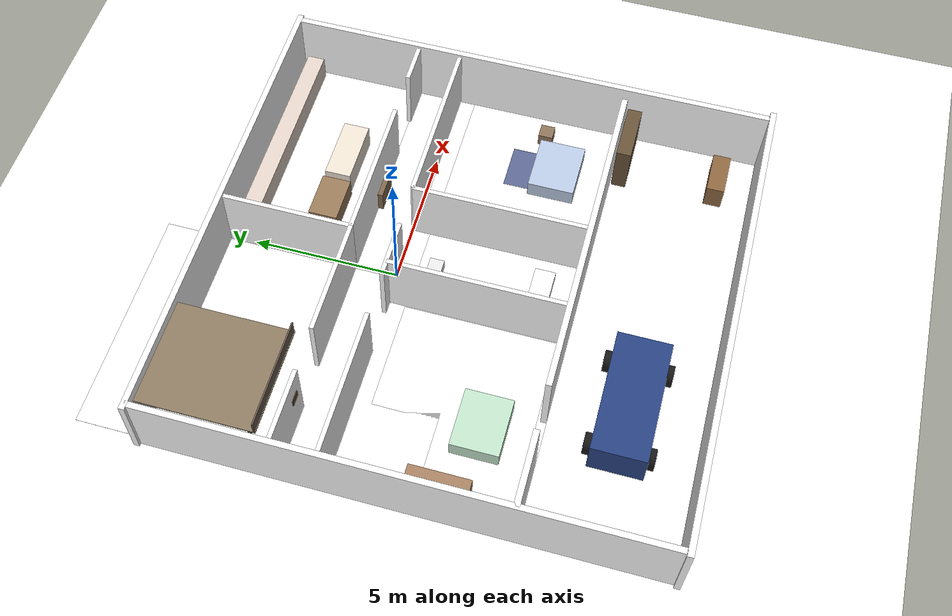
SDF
<sdf version="1.8">
 <world name="house">
  <model name="ground_plane">
   <static>true</static>
   <link name="link">
    <collision name="c"><geometry><plane><normal>0 0 1</normal><size>100 100</size></plane></geometry></collision>
    <visual name="v">
     <geometry><plane><normal>0 0 1</normal><size>100 100</size></plane></geometry>
     <material>
      <ambient>0.6 0.6 0.6 1</ambient>
      <diffuse>1 1 1 1</diffuse>
      <pbr><metal><albedo_map>model://textures/concrete.png</albedo_map><roughness>0.9</roughness></metal></pbr>
     </material>
    </visual>
   </link>
  </model>
  <model name="floor_living">
   <static>true</static>
   <pose>-4 2.7 0.003 0 0 0</pose>
   <link name="link">
    <collision name="c"><geometry><box><size>7.8 11 0.004</size></box></geometry></collision>
    <visual name="v">
     <geometry><box><size>7.8 11 0.004</size></box></geometry>
     <material>
      <ambient>0.6 0.6 0.6 1</ambient>
      <diffuse>1 1 1 1</diffuse>
      <pbr><metal><albedo_map>model://textures/wood_plank.png</albedo_map><roughness>0.7</roughness></metal></pbr>
     </material>
    </visual>
   </link>
  </model>
  <model name="floor_kitchen">
   <static>true</static>
   <pose>4 3.7 0.003 0 0 0</pose>
   <link name="link">
    <collision name="c"><geometry><box><size>7.8 4.4 0.004</size></box></geometry></collision>
    <visual name="v">
     <geometry><box><size>7.8 4.4 0.004</size></box></geometry>
     <material>
      <ambient>0.6 0.6 0.6 1</ambient>
      <diffuse>1 1 1 1</diffuse>
      <pbr><metal><albedo_map>model://textures/tile_kitchen.png</albedo_map><roughness>0.5</roughness></metal></pbr>
     </material>
    </visual>
   </link>
  </model>
  <model name="floor_bed1">
   <static>true</static>
   <pose>5 -3.2 0.003 0 0 0</pose>
   <link name="link">
    <collision name="c"><geometry><box><size>5.8 5.2 0.004</size></box></geometry></collision>
    <visual name="v">
     <geometry><box><size>5.8 5.2 0.004</size></box></geometry>
     <material>
      <ambient>0.6 0.6 0.6 1</ambient>
      <diffuse>1 1 1 1</diffuse>
      <pbr><metal><albedo_map>model://textures/carpet_blue.png</albedo_map><roughness>0.95</roughness></metal></pbr>
     </material>
    </visual>
   </link>
  </model>
  <model name="floor_bed2">
   <static>true</static>
   <pose>-4.5 -3.2 0.003 0 0 0</pose>
   <link name="link">
    <collision name="c"><geometry><box><size>6.8 5.2 0.004</size></box></geometry></collision>
    <visual name="v">
     <geometry><box><size>6.8 5.2 0.004</size></box></geometry>
     <material>
      <ambient>0.6 0.6 0.6 1</ambient>
      <diffuse>1 1 1 1</diffuse>
      <pbr>
       <metal><albedo_map>model://textures/carpet_green.png</albedo_map><roughness>0.95</roughness></metal>
      </pbr>
     </material>
    </visual>
   </link>
  </model>
  <model name="floor_bath">
   <static>true</static>
   <pose>0.5 -3.2 0.003 0 0 0</pose>
   <link name="link">
    <collision name="c"><geometry><box><size>3 5.2 0.004</size></box></geometry></collision>
    <visual name="v">
     <geometry><box><size>3 5.2 0.004</size></box></geometry>
     <material>
      <ambient>0.6 0.6 0.6 1</ambient>
      <diffuse>1 1 1 1</diffuse>
      <pbr><metal><albedo_map>model://textures/tile_bath.png</albedo_map><roughness>0.5</roughness></metal></pbr>
     </material>
    </visual>
   </link>
  </model>
  <model name="floor_garage">
   <static>true</static>
   <pose>0 -8.5 0.003 0 0 0</pose>
   <link name="link">
    <collision name="c"><geometry><box><size>16 4.8 0.004</size></box></geometry></collision>
    <visual name="v">
     <geometry><box><size>16 4.8 0.004</size></box></geometry>
     <material>
      <ambient>0.6 0.6 0.6 1</ambient>
      <diffuse>1 1 1 1</diffuse>
      <pbr><metal><albedo_map>model://textures/concrete.png</albedo_map><roughness>0.9</roughness></metal></pbr>
     </material>
    </visual>
   </link>
  </model>
  <model name="wall_n">
   <static>true</static>
   <pose>0  6 1.25 0 0 0</pose>
   <link name="link">
    <collision name="c"><geometry><box><size>16.4 0.2 2.5</size></box></geometry></collision>
    <visual name="v">
     <geometry><box><size>16.4 0.2 2.5</size></box></geometry>
     <material>
      <ambient>0.6 0.6 0.6 1</ambient>
      <diffuse>1 1 1 1</diffuse>
      <pbr><metal><albedo_map>model://textures/drywall.png</albedo_map><roughness>0.85</roughness></metal></pbr>
     </material>
    </visual>
   </link>
  </model>
  <model name="wall_garage_n_a">
   <static>true</static>
   <pose>-6.75 -6 1.25 0 0 0</pose>
   <link name="link">
    <collision name="c"><geometry><box><size>2.5 0.2 2.5</size></box></geometry></collision>
    <visual name="v">
     <geometry><box><size>2.5 0.2 2.5</size></box></geometry>
     <material>
      <ambient>0.6 0.6 0.6 1</ambient>
      <diffuse>1 1 1 1</diffuse>
      <pbr><metal><albedo_map>model://textures/drywall.png</albedo_map><roughness>0.85</roughness></metal></pbr>
     </material>
    </visual>
   </link>
  </model>
  <model name="wall_garage_n_b">
   <static>true</static>
   <pose>1.75 -6 1.25 0 0 0</pose>
   <link name="link">
    <collision name="c"><geometry><box><size>11.5 0.2 2.5</size></box></geometry></collision>
    <visual name="v">
     <geometry><box><size>11.5 0.2 2.5</size></box></geometry>
     <material>
      <ambient>0.6 0.6 0.6 1</ambient>
      <diffuse>1 1 1 1</diffuse>
      <pbr><metal><albedo_map>model://textures/drywall.png</albedo_map><roughness>0.85</roughness></metal></pbr>
     </material>
    </visual>
   </link>
  </model>
  <model name="wall_s">
   <static>true</static>
   <pose>0 -11 1.3 0 0 0</pose>
   <link name="link">
    <collision name="c"><geometry><box><size>16.4 0.2 2.6</size></box></geometry></collision>
    <visual name="v">
     <geometry><box><size>16.4 0.2 2.6</size></box></geometry>
     <material>
      <ambient>0.6 0.6 0.6 1</ambient>
      <diffuse>1 1 1 1</diffuse>
      <pbr><metal><albedo_map>model://textures/concrete.png</albedo_map><roughness>0.9</roughness></metal></pbr>
     </material>
    </visual>
   </link>
  </model>
  <model name="wall_e">
   <static>true</static>
   <pose>8  -2.5 1.25 0 0 0</pose>
   <link name="link">
    <collision name="c"><geometry><box><size>0.2 17 2.5</size></box></geometry></collision>
    <visual name="v">
     <geometry><box><size>0.2 17 2.5</size></box></geometry>
     <material>
      <ambient>0.6 0.6 0.6 1</ambient>
      <diffuse>1 1 1 1</diffuse>
      <pbr><metal><albedo_map>model://textures/drywall.png</albedo_map><roughness>0.85</roughness></metal></pbr>
     </material>
    </visual>
   </link>
  </model>
  <model name="wall_w">
   <static>true</static>
   <pose>-8  -2.5 1.25 0 0 0</pose>
   <link name="link">
    <collision name="c"><geometry><box><size>0.2 17 2.5</size></box></geometry></collision>
    <visual name="v">
     <geometry><box><size>0.2 17 2.5</size></box></geometry>
     <material>
      <ambient>0.6 0.6 0.6 1</ambient>
      <diffuse>1 1 1 1</diffuse>
      <pbr><metal><albedo_map>model://textures/drywall.png</albedo_map><roughness>0.85</roughness></metal></pbr>
     </material>
    </visual>
   </link>
  </model>
  <model name="wall_A1">
   <static>true</static>
   <pose>-5.5 0 1.2 0 0 0</pose>
   <link name="link">
    <collision name="c"><geometry><box><size>5 0.15 2.4</size></box></geometry></collision>
    <visual name="v">
     <geometry><box><size>5 0.15 2.4</size></box></geometry>
     <material>
      <ambient>0.6 0.6 0.6 1</ambient>
      <diffuse>1 1 1 1</diffuse>
      <pbr><metal><albedo_map>model://textures/drywall.png</albedo_map><roughness>0.85</roughness></metal></pbr>
     </material>
    </visual>
   </link>
  </model>
  <model name="wall_A2">
   <static>true</static>
   <pose>-0.5 0 1.2 0 0 0</pose>
   <link name="link">
    <collision name="c"><geometry><box><size>2 0.15 2.4</size></box></geometry></collision>
    <visual name="v">
     <geometry><box><size>2 0.15 2.4</size></box></geometry>
     <material>
      <ambient>0.6 0.6 0.6 1</ambient>
      <diffuse>1 1 1 1</diffuse>
      <pbr><metal><albedo_map>model://textures/drywall.png</albedo_map><roughness>0.85</roughness></metal></pbr>
     </material>
    </visual>
   </link>
  </model>
  <model name="wall_A4">
   <static>true</static>
   <pose>5 0 1.2 0 0 0</pose>
   <link name="link">
    <collision name="c"><geometry><box><size>6 0.15 2.4</size></box></geometry></collision>
    <visual name="v">
     <geometry><box><size>6 0.15 2.4</size></box></geometry>
     <material>
      <ambient>0.6 0.6 0.6 1</ambient>
      <diffuse>1 1 1 1</diffuse>
      <pbr><metal><albedo_map>model://textures/drywall.png</albedo_map><roughness>0.85</roughness></metal></pbr>
     </material>
    </visual>
   </link>
  </model>
  <model name="wall_B1">
   <static>true</static>
   <pose>-6.75 1.5 1.2 0 0 0</pose>
   <link name="link">
    <collision name="c"><geometry><box><size>2.5 0.15 2.4</size></box></geometry></collision>
    <visual name="v">
     <geometry><box><size>2.5 0.15 2.4</size></box></geometry>
     <material>
      <ambient>0.6 0.6 0.6 1</ambient>
      <diffuse>1 1 1 1</diffuse>
      <pbr><metal><albedo_map>model://textures/drywall.png</albedo_map><roughness>0.85</roughness></metal></pbr>
     </material>
    </visual>
   </link>
  </model>
  <model name="wall_B2">
   <static>true</static>
   <pose>-2 1.5 1.2 0 0 0</pose>
   <link name="link">
    <collision name="c"><geometry><box><size>4 0.15 2.4</size></box></geometry></collision>
    <visual name="v">
     <geometry><box><size>4 0.15 2.4</size></box></geometry>
     <material>
      <ambient>0.6 0.6 0.6 1</ambient>
      <diffuse>1 1 1 1</diffuse>
      <pbr><metal><albedo_map>model://textures/drywall.png</albedo_map><roughness>0.85</roughness></metal></pbr>
     </material>
    </visual>
   </link>
  </model>
  <model name="wall_B3">
   <static>true</static>
   <pose>2.5 1.5 1.2 0 0 0</pose>
   <link name="link">
    <collision name="c"><geometry><box><size>5 0.15 2.4</size></box></geometry></collision>
    <visual name="v">
     <geometry><box><size>5 0.15 2.4</size></box></geometry>
     <material>
      <ambient>0.6 0.6 0.6 1</ambient>
      <diffuse>1 1 1 1</diffuse>
      <pbr><metal><albedo_map>model://textures/drywall.png</albedo_map><roughness>0.85</roughness></metal></pbr>
     </material>
    </visual>
   </link>
  </model>
  <model name="wall_B5">
   <static>true</static>
   <pose>7.25 1.5 1.2 0 0 0</pose>
   <link name="link">
    <collision name="c"><geometry><box><size>1.5 0.15 2.4</size></box></geometry></collision>
    <visual name="v">
     <geometry><box><size>1.5 0.15 2.4</size></box></geometry>
     <material>
      <ambient>0.6 0.6 0.6 1</ambient>
      <diffuse>1 1 1 1</diffuse>
      <pbr><metal><albedo_map>model://textures/drywall.png</albedo_map><roughness>0.85</roughness></metal></pbr>
     </material>
    </visual>
   </link>
  </model>
  <model name="wall_C">
   <static>true</static>
   <pose>0 3.75 1.2 0 0 0</pose>
   <link name="link">
    <collision name="c"><geometry><box><size>0.15 4.5 2.4</size></box></geometry></collision>
    <visual name="v">
     <geometry><box><size>0.15 4.5 2.4</size></box></geometry>
     <material>
      <ambient>0.6 0.6 0.6 1</ambient>
      <diffuse>1 1 1 1</diffuse>
      <pbr><metal><albedo_map>model://textures/drywall.png</albedo_map><roughness>0.85</roughness></metal></pbr>
     </material>
    </visual>
   </link>
  </model>
  <model name="wall_D">
   <static>true</static>
   <pose>-1 -3 1.2 0 0 0</pose>
   <link name="link">
    <collision name="c"><geometry><box><size>0.15 6 2.4</size></box></geometry></collision>
    <visual name="v">
     <geometry><box><size>0.15 6 2.4</size></box></geometry>
     <material>
      <ambient>0.6 0.6 0.6 1</ambient>
      <diffuse>1 1 1 1</diffuse>
      <pbr><metal><albedo_map>model://textures/drywall.png</albedo_map><roughness>0.85</roughness></metal></pbr>
     </material>
    </visual>
   </link>
  </model>
  <model name="wall_E">
   <static>true</static>
   <pose>2 -3 1.2 0 0 0</pose>
   <link name="link">
    <collision name="c"><geometry><box><size>0.15 6 2.4</size></box></geometry></collision>
    <visual name="v">
     <geometry><box><size>0.15 6 2.4</size></box></geometry>
     <material>
      <ambient>0.6 0.6 0.6 1</ambient>
      <diffuse>1 1 1 1</diffuse>
      <pbr><metal><albedo_map>model://textures/drywall.png</albedo_map><roughness>0.85</roughness></metal></pbr>
     </material>
    </visual>
   </link>
  </model>
  <model name="sofa">
   <static>true</static>
   <pose>-5.5 4.5 0.4 0 0 0</pose>
   <link name="link">
    <collision name="c"><geometry><box><size>2.2 0.8 0.8</size></box></geometry></collision>
    <visual name="v">
     <geometry><box><size>2.2 0.8 0.8</size></box></geometry>
     <material><ambient>0.45 0.38 0.55 1</ambient><diffuse>0.45 0.38 0.55 1</diffuse></material>
    </visual>
   </link>
  </model>
  <model name="coffee_table">
   <static>true</static>
   <pose>-5.5 3.2 0.22 0 0 0</pose>
   <link name="link">
    <collision name="c"><geometry><box><size>1.0 0.55 0.44</size></box></geometry></collision>
    <visual name="v">
     <geometry><box><size>1.0 0.55 0.44</size></box></geometry>
     <material><ambient>0.55 0.40 0.28 1</ambient><diffuse>0.55 0.40 0.28 1</diffuse></material>
    </visual>
   </link>
  </model>
  <model name="tv_stand">
   <static>true</static>
   <pose>-7.4 1.8 0.3 0 0 0</pose>
   <link name="link">
    <collision name="c"><geometry><box><size>0.4 1.5 0.6</size></box></geometry></collision>
    <visual name="v">
     <geometry><box><size>0.4 1.5 0.6</size></box></geometry>
     <material><ambient>0.2 0.2 0.2 1</ambient><diffuse>0.2 0.2 0.2 1</diffuse></material>
    </visual>
   </link>
  </model>
  <model name="counter_n">
   <static>true</static>
   <pose>4 5.4 0.45 0 0 0</pose>
   <link name="link">
    <collision name="c"><geometry><box><size>7.5 0.6 0.9</size></box></geometry></collision>
    <visual name="v">
     <geometry><box><size>7.5 0.6 0.9</size></box></geometry>
     <material><ambient>0.88 0.82 0.78 1</ambient><diffuse>0.88 0.82 0.78 1</diffuse></material>
    </visual>
   </link>
  </model>
  <model name="island">
   <static>true</static>
   <pose>4 3.0 0.45 0 0 0</pose>
   <link name="link">
    <collision name="c"><geometry><box><size>2.2 0.9 0.9</size></box></geometry></collision>
    <visual name="v">
     <geometry><box><size>2.2 0.9 0.9</size></box></geometry>
     <material><ambient>0.92 0.88 0.82 1</ambient><diffuse>0.92 0.88 0.82 1</diffuse></material>
    </visual>
   </link>
  </model>
  <model name="bed_1">
   <static>true</static>
   <pose>5.5 -4.2 0.3 0 0 0</pose>
   <link name="link">
    <collision name="c"><geometry><box><size>2.0 1.6 0.6</size></box></geometry></collision>
    <visual name="v">
     <geometry><box><size>2.0 1.6 0.6</size></box></geometry>
     <material><ambient>0.72 0.78 0.88 1</ambient><diffuse>0.72 0.78 0.88 1</diffuse></material>
    </visual>
   </link>
  </model>
  <model name="ns_1">
   <static>true</static>
   <pose>7.0 -3.5 0.25 0 0 0</pose>
   <link name="link">
    <collision name="c"><geometry><box><size>0.5 0.5 0.5</size></box></geometry></collision>
    <visual name="v">
     <geometry><box><size>0.5 0.5 0.5</size></box></geometry>
     <material><ambient>0.55 0.45 0.35 1</ambient><diffuse>0.55 0.45 0.35 1</diffuse></material>
    </visual>
   </link>
  </model>
  <model name="bed_2">
   <static>true</static>
   <pose>-4.8 -4.2 0.3 0 0 0</pose>
   <link name="link">
    <collision name="c"><geometry><box><size>2.0 1.6 0.6</size></box></geometry></collision>
    <visual name="v">
     <geometry><box><size>2.0 1.6 0.6</size></box></geometry>
     <material><ambient>0.75 0.88 0.78 1</ambient><diffuse>0.75 0.88 0.78 1</diffuse></material>
    </visual>
   </link>
  </model>
  <model name="wardrobe">
   <static>true</static>
   <pose>-7.4 -3.5 0.7 0 0 0</pose>
   <link name="link">
    <collision name="c"><geometry><box><size>0.6 2.0 1.4</size></box></geometry></collision>
    <visual name="v">
     <geometry><box><size>0.6 2.0 1.4</size></box></geometry>
     <material><ambient>0.65 0.50 0.38 1</ambient><diffuse>0.65 0.50 0.38 1</diffuse></material>
    </visual>
   </link>
  </model>
  <model name="bathtub">
   <static>true</static>
   <pose>0.5 -4.8 0.2 0 0 0</pose>
   <link name="link">
    <collision name="c"><geometry><box><size>1.6 0.7 0.4</size></box></geometry></collision>
    <visual name="v">
     <geometry><box><size>1.6 0.7 0.4</size></box></geometry>
     <material><ambient>0.95 0.95 0.95 1</ambient><diffuse>0.95 0.95 0.95 1</diffuse></material>
    </visual>
   </link>
  </model>
  <model name="toilet">
   <static>true</static>
   <pose>0.5 -1.2 0.2 0 0 0</pose>
   <link name="link">
    <collision name="c"><geometry><box><size>0.5 0.5 0.4</size></box></geometry></collision>
    <visual name="v">
     <geometry><box><size>0.5 0.5 0.4</size></box></geometry>
     <material><ambient>0.90 0.90 0.90 1</ambient><diffuse>0.90 0.90 0.90 1</diffuse></material>
    </visual>
   </link>
  </model>
  <model name="hall_picture_1">
   <static>true</static>
   <pose>-6 1.42 1.5 0 0 0</pose>
   <link name="link">
    <collision name="c"><geometry><box><size>0.4 0.05 0.3</size></box></geometry></collision>
    <visual name="v">
     <geometry><box><size>0.4 0.05 0.3</size></box></geometry>
     <material><ambient>0.35 0.28 0.2 1</ambient><diffuse>0.35 0.28 0.2 1</diffuse></material>
    </visual>
   </link>
  </model>
  <model name="hall_console">
   <static>true</static>
   <pose>3 1.4 0.4 0 0 0</pose>
   <link name="link">
    <collision name="c"><geometry><box><size>1.0 0.3 0.8</size></box></geometry></collision>
    <visual name="v">
     <geometry><box><size>1.0 0.3 0.8</size></box></geometry>
     <material><ambient>0.5 0.4 0.3 1</ambient><diffuse>0.5 0.4 0.3 1</diffuse></material>
    </visual>
   </link>
  </model>
  <model name="hall_picture_2">
   <static>true</static>
   <pose>6 -0.02 1.5 0 0 0</pose>
   <link name="link">
    <collision name="c"><geometry><box><size>0.4 0.05 0.3</size></box></geometry></collision>
    <visual name="v">
     <geometry><box><size>0.4 0.05 0.3</size></box></geometry>
     <material><ambient>0.35 0.28 0.2 1</ambient><diffuse>0.35 0.28 0.2 1</diffuse></material>
    </visual>
   </link>
  </model>
  <model name="loft_pole_1">
   <static>true</static>
   <pose>-7.5 2.3 1.05 0 0 0</pose>
   <link name="link">
    <collision name="c">
     <geometry><cylinder><radius>0.06</radius><length>2.1</length></cylinder></geometry>
    </collision>
    <visual name="v">
     <geometry><cylinder><radius>0.06</radius><length>2.1</length></cylinder></geometry>
     <material><ambient>0.4 0.35 0.3 1</ambient><diffuse>0.4 0.35 0.3 1</diffuse></material>
    </visual>
   </link>
  </model>
  <model name="loft_deck">
   <static>true</static>
   <pose>-5.9 3.95 2.125 0 0 0</pose>
   <link name="link">
    <collision name="c"><geometry><box><size>3.6 3.9 0.05</size></box></geometry></collision>
    <visual name="v">
     <geometry><box><size>3.6 3.9 0.05</size></box></geometry>
     <material><ambient>0.55 0.48 0.38 1</ambient><diffuse>0.55 0.48 0.38 1</diffuse></material>
    </visual>
   </link>
  </model>
  <model name="loft_rail">
   <static>true</static>
   <pose>-5.9 2.05 2.4 0 0 0</pose>
   <link name="link">
    <collision name="c"><geometry><box><size>3.6 0.05 0.5</size></box></geometry></collision>
    <visual name="v">
     <geometry><box><size>3.6 0.05 0.5</size></box></geometry>
     <material><ambient>0.4 0.35 0.3 1</ambient><diffuse>0.4 0.35 0.3 1</diffuse></material>
    </visual>
   </link>
  </model>
  <model name="dining_table">
   <static>true</static>
   <pose>2 3 0.375 0 0 0</pose>
   <link name="link">
    <collision name="c"><geometry><box><size>1.6 1.0 0.75</size></box></geometry></collision>
    <visual name="v">
     <geometry><box><size>1.6 1.0 0.75</size></box></geometry>
     <material><ambient>0.6 0.48 0.35 1</ambient><diffuse>0.6 0.48 0.35 1</diffuse></material>
    </visual>
   </link>
  </model>
  <model name="rug_living">
   <static>true</static>
   <pose>-5.2 3.4 0.006 0 0 0</pose>
   <link name="link">
    <collision name="c"><geometry><box><size>2.4 1.6 0.01</size></box></geometry></collision>
    <visual name="v">
     <geometry><box><size>2.4 1.6 0.01</size></box></geometry>
     <material><ambient>0.55 0.2 0.2 0.85</ambient><diffuse>0.55 0.2 0.2 0.85</diffuse></material>
    </visual>
   </link>
  </model>
  <model name="rug_bed1">
   <static>true</static>
   <pose>5.5 -3.0 0.006 0 0 0</pose>
   <link name="link">
    <collision name="c"><geometry><box><size>1.6 1.0 0.01</size></box></geometry></collision>
    <visual name="v">
     <geometry><box><size>1.6 1.0 0.01</size></box></geometry>
     <material><ambient>0.3 0.35 0.55 0.85</ambient><diffuse>0.3 0.35 0.55 0.85</diffuse></material>
    </visual>
   </link>
  </model>
  <model name="car_body">
   <static>true</static>
   <pose>-3 -8.5 0.65 0 0 0</pose>
   <link name="link">
    <collision name="c"><geometry><box><size>4.2 1.8 1.3</size></box></geometry></collision>
    <visual name="v">
     <geometry><box><size>4.2 1.8 1.3</size></box></geometry>
     <material><ambient>0.15 0.25 0.5 1</ambient><diffuse>0.15 0.25 0.5 1</diffuse></material>
    </visual>
   </link>
  </model>
  <model name="car_wheel_fl">
   <static>true</static>
   <pose>-4.5 -7.5 0.35 1.5708 0 0</pose>
   <link name="link">
    <collision name="c">
     <geometry><cylinder><radius>0.35</radius><length>0.25</length></cylinder></geometry>
    </collision>
    <visual name="v">
     <geometry><cylinder><radius>0.35</radius><length>0.25</length></cylinder></geometry>
     <material><ambient>0.1 0.1 0.1 1</ambient><diffuse>0.1 0.1 0.1 1</diffuse></material>
    </visual>
   </link>
  </model>
  <model name="car_wheel_fr">
   <static>true</static>
   <pose>-4.5 -9.5 0.35 1.5708 0 0</pose>
   <link name="link">
    <collision name="c">
     <geometry><cylinder><radius>0.35</radius><length>0.25</length></cylinder></geometry>
    </collision>
    <visual name="v">
     <geometry><cylinder><radius>0.35</radius><length>0.25</length></cylinder></geometry>
     <material><ambient>0.1 0.1 0.1 1</ambient><diffuse>0.1 0.1 0.1 1</diffuse></material>
    </visual>
   </link>
  </model>
  <model name="car_wheel_rl">
   <static>true</static>
   <pose>-1.5 -7.5 0.35 1.5708 0 0</pose>
   <link name="link">
    <collision name="c">
     <geometry><cylinder><radius>0.35</radius><length>0.25</length></cylinder></geometry>
    </collision>
    <visual name="v">
     <geometry><cylinder><radius>0.35</radius><length>0.25</length></cylinder></geometry>
     <material><ambient>0.1 0.1 0.1 1</ambient><diffuse>0.1 0.1 0.1 1</diffuse></material>
    </visual>
   </link>
  </model>
  <model name="car_wheel_rr">
   <static>true</static>
   <pose>-1.5 -9.5 0.35 1.5708 0 0</pose>
   <link name="link">
    <collision name="c">
     <geometry><cylinder><radius>0.35</radius><length>0.25</length></cylinder></geometry>
    </collision>
    <visual name="v">
     <geometry><cylinder><radius>0.35</radius><length>0.25</length></cylinder></geometry>
     <material><ambient>0.1 0.1 0.1 1</ambient><diffuse>0.1 0.1 0.1 1</diffuse></material>
    </visual>
   </link>
  </model>
  <model name="garage_shelf">
   <static>true</static>
   <pose>6.7 -6.4 0.9 0 0 0</pose>
   <link name="link">
    <collision name="c"><geometry><box><size>2.0 0.5 1.8</size></box></geometry></collision>
    <visual name="v">
     <geometry><box><size>2.0 0.5 1.8</size></box></geometry>
     <material><ambient>0.4 0.32 0.22 1</ambient><diffuse>0.4 0.32 0.22 1</diffuse></material>
    </visual>
   </link>
  </model>
  <model name="garage_workbench">
   <static>true</static>
   <pose>6.5 -9.7 0.45 0 0 0</pose>
   <link name="link">
    <collision name="c"><geometry><box><size>1.5 0.6 0.9</size></box></geometry></collision>
    <visual name="v">
     <geometry><box><size>1.5 0.6 0.9</size></box></geometry>
     <material><ambient>0.55 0.4 0.25 1</ambient><diffuse>0.55 0.4 0.25 1</diffuse></material>
    </visual>
   </link>
  </model>
  <model name="world_monitor_cam">
   <static>true</static>
   <pose>7.5 7.0 5.3 0 0.55 -2.356</pose>
   <link name="link">
    <sensor name="monitor_camera" type="camera">
     <always_on>true</always_on>
     <update_rate>10</update_rate>
     <topic>world_monitor/image_raw</topic>
     <camera>
      <horizontal_fov>1.3</horizontal_fov>
      <image><width>960</width><height>540</height><format>R8G8B8</format></image>
      <clip><near>0.05</near><far>35.0</far></clip>
     </camera>
    </sensor>
   </link>
  </model>
 </world>
</sdf>
